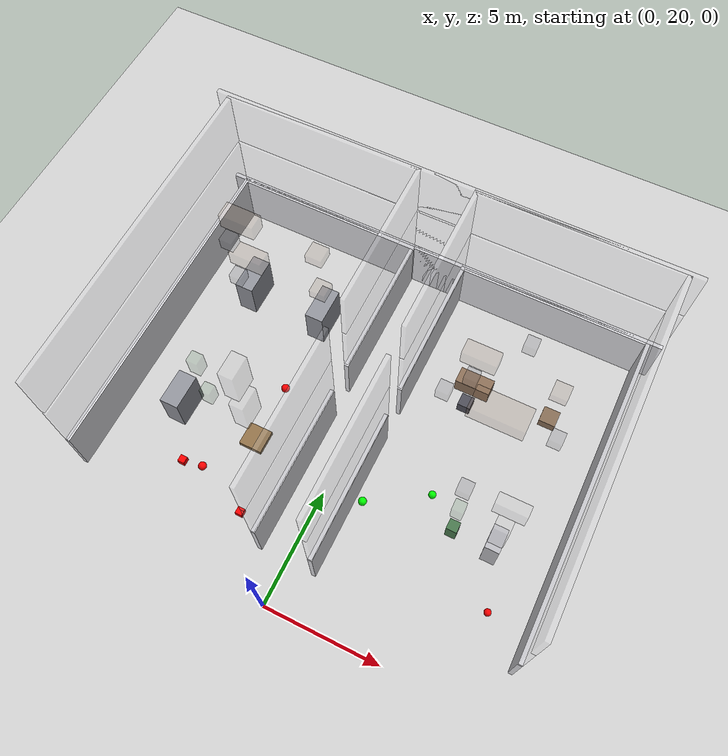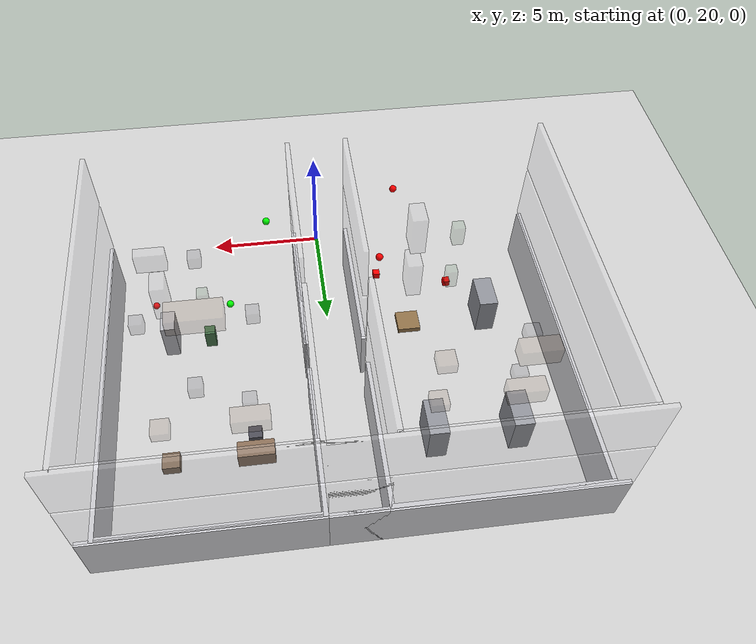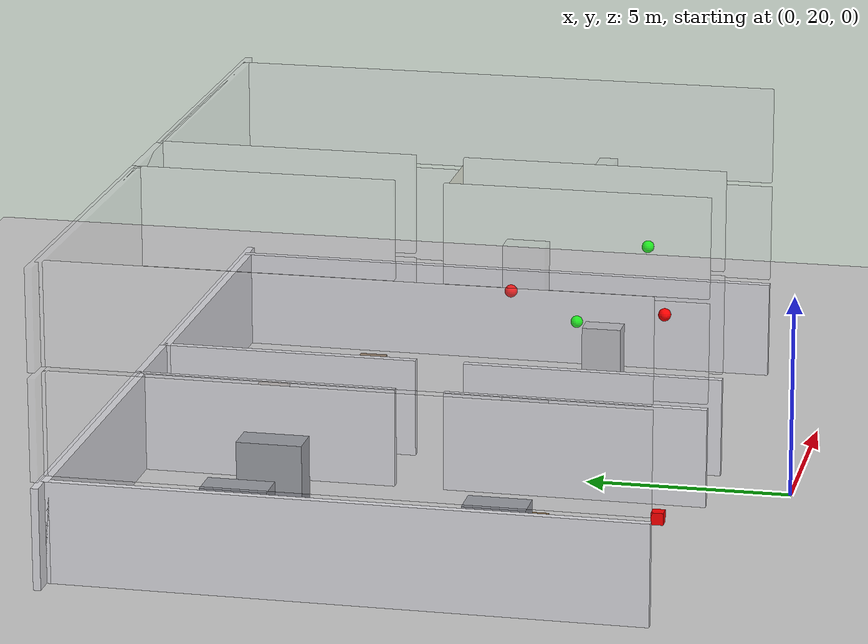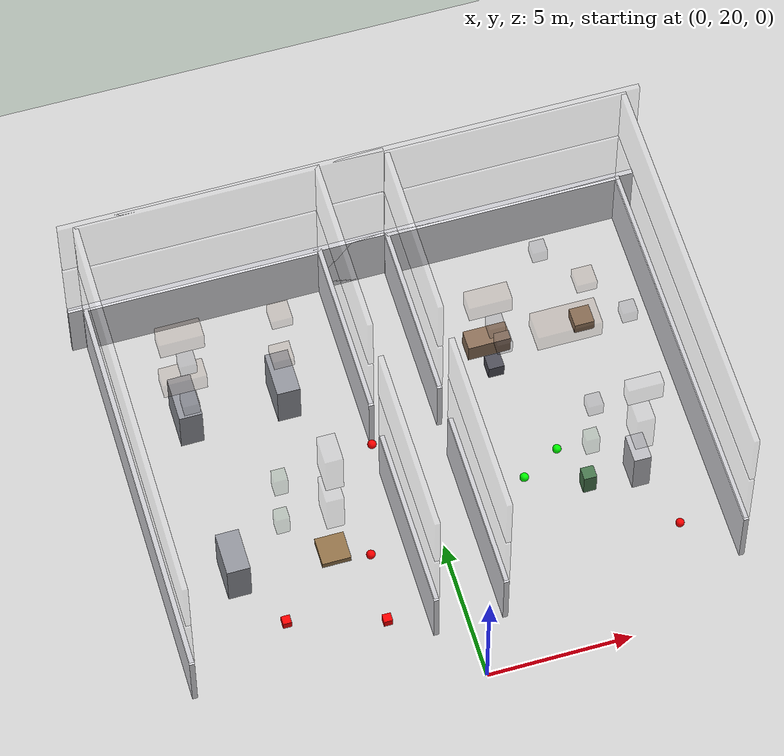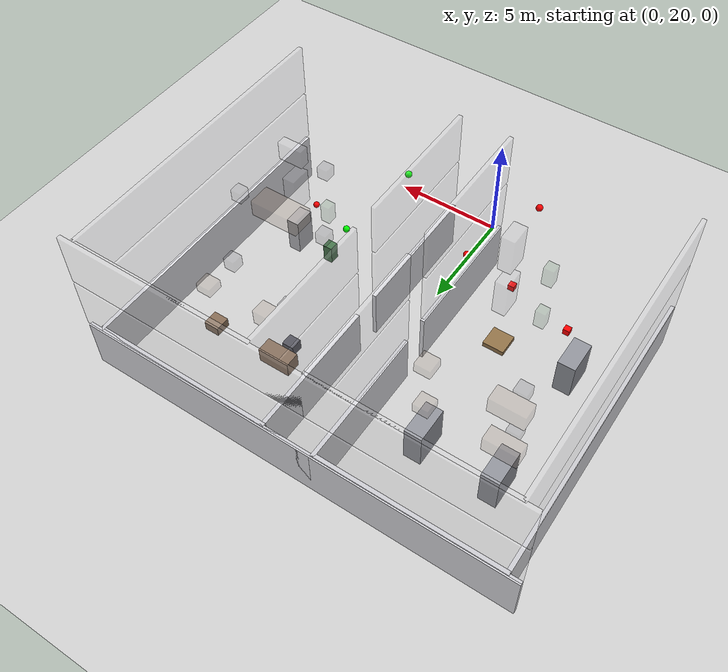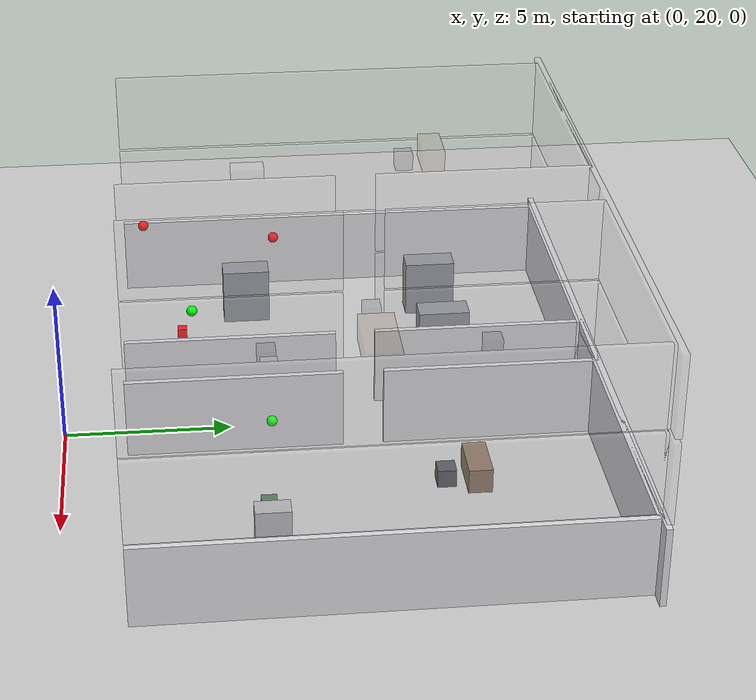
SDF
<sdf version="1.7">
 <world name="generated_world">
  <include><uri>model://sun</uri></include>
  <include><uri>model://ground_plane</uri></include>
  <model name="generated_building">
   <static>true</static>
   <link name="exterior_north_floor_0">
    <pose>0.0000 35.9100 1.2250 0.0000 0.0000 0.0000</pose>
    <collision name="exterior_north_floor_0_collision">
     <geometry><box><size>20.0000 0.1800 2.4500</size></box></geometry>
    </collision>
    <visual name="exterior_north_floor_0_visual">
     <geometry><box><size>20.0000 0.1800 2.4500</size></box></geometry>
     <material><ambient>0.86 0.86 0.88 1</ambient><diffuse>0.86 0.86 0.88 1</diffuse></material>
    </visual>
    <gravity>false</gravity>
   </link>
   <link name="north_end_wall_floor_0">
    <pose>0.0000 35.9100 1.2250 0.0000 0.0000 0.0000</pose>
    <collision name="north_end_wall_floor_0_collision">
     <geometry><box><size>2.2000 0.1800 2.4500</size></box></geometry>
    </collision>
    <visual name="north_end_wall_floor_0_visual">
     <geometry><box><size>2.2000 0.1800 2.4500</size></box></geometry>
     <material><ambient>0.86 0.86 0.88 1</ambient><diffuse>0.86 0.86 0.88 1</diffuse></material>
    </visual>
    <gravity>false</gravity>
   </link>
   <link name="floor_0_room_2_corridor_wall_lower">
    <pose>-1.1900 25.0875 1.2250 0.0000 0.0000 0.0000</pose>
    <collision name="floor_0_room_2_corridor_wall_lower_collision">
     <geometry><box><size>0.1800 6.4150 2.4500</size></box></geometry>
    </collision>
    <visual name="floor_0_room_2_corridor_wall_lower_visual">
     <geometry><box><size>0.1800 6.4150 2.4500</size></box></geometry>
     <material><ambient>0.86 0.86 0.88 1</ambient><diffuse>0.86 0.86 0.88 1</diffuse></material>
    </visual>
    <gravity>false</gravity>
   </link>
   <link name="floor_0_room_2_corridor_wall_upper">
    <pose>-1.1900 32.7025 1.2250 0.0000 0.0000 0.0000</pose>
    <collision name="floor_0_room_2_corridor_wall_upper_collision">
     <geometry><box><size>0.1800 6.4150 2.4500</size></box></geometry>
    </collision>
    <visual name="floor_0_room_2_corridor_wall_upper_visual">
     <geometry><box><size>0.1800 6.4150 2.4500</size></box></geometry>
     <material><ambient>0.86 0.86 0.88 1</ambient><diffuse>0.86 0.86 0.88 1</diffuse></material>
    </visual>
    <gravity>false</gravity>
   </link>
   <link name="floor_0_room_2_west_wall">
    <pose>-9.4100 28.8950 1.2250 0.0000 0.0000 0.0000</pose>
    <collision name="floor_0_room_2_west_wall_collision">
     <geometry><box><size>0.1800 14.0300 2.4500</size></box></geometry>
    </collision>
    <visual name="floor_0_room_2_west_wall_visual">
     <geometry><box><size>0.1800 14.0300 2.4500</size></box></geometry>
     <material><ambient>0.86 0.86 0.88 1</ambient><diffuse>0.86 0.86 0.88 1</diffuse></material>
    </visual>
    <gravity>false</gravity>
   </link>
   <link name="floor_0_room_2_north_wall">
    <pose>-5.3000 35.8200 1.2250 0.0000 0.0000 0.0000</pose>
    <collision name="floor_0_room_2_north_wall_collision">
     <geometry><box><size>8.4000 0.1800 2.4500</size></box></geometry>
    </collision>
    <visual name="floor_0_room_2_north_wall_visual">
     <geometry><box><size>8.4000 0.1800 2.4500</size></box></geometry>
     <material><ambient>0.86 0.86 0.88 1</ambient><diffuse>0.86 0.86 0.88 1</diffuse></material>
    </visual>
    <gravity>false</gravity>
   </link>
   <link name="floor_0_room_3_corridor_wall_lower">
    <pose>1.1900 25.0875 1.2250 0.0000 0.0000 0.0000</pose>
    <collision name="floor_0_room_3_corridor_wall_lower_collision">
     <geometry><box><size>0.1800 6.4150 2.4500</size></box></geometry>
    </collision>
    <visual name="floor_0_room_3_corridor_wall_lower_visual">
     <geometry><box><size>0.1800 6.4150 2.4500</size></box></geometry>
     <material><ambient>0.86 0.86 0.88 1</ambient><diffuse>0.86 0.86 0.88 1</diffuse></material>
    </visual>
    <gravity>false</gravity>
   </link>
   <link name="floor_0_room_3_corridor_wall_upper">
    <pose>1.1900 32.7025 1.2250 0.0000 0.0000 0.0000</pose>
    <collision name="floor_0_room_3_corridor_wall_upper_collision">
     <geometry><box><size>0.1800 6.4150 2.4500</size></box></geometry>
    </collision>
    <visual name="floor_0_room_3_corridor_wall_upper_visual">
     <geometry><box><size>0.1800 6.4150 2.4500</size></box></geometry>
     <material><ambient>0.86 0.86 0.88 1</ambient><diffuse>0.86 0.86 0.88 1</diffuse></material>
    </visual>
    <gravity>false</gravity>
   </link>
   <link name="floor_0_room_3_east_wall">
    <pose>9.4100 28.8950 1.2250 0.0000 0.0000 0.0000</pose>
    <collision name="floor_0_room_3_east_wall_collision">
     <geometry><box><size>0.1800 14.0300 2.4500</size></box></geometry>
    </collision>
    <visual name="floor_0_room_3_east_wall_visual">
     <geometry><box><size>0.1800 14.0300 2.4500</size></box></geometry>
     <material><ambient>0.86 0.86 0.88 1</ambient><diffuse>0.86 0.86 0.88 1</diffuse></material>
    </visual>
    <gravity>false</gravity>
   </link>
   <link name="floor_0_room_3_north_wall">
    <pose>5.3000 35.8200 1.2250 0.0000 0.0000 0.0000</pose>
    <collision name="floor_0_room_3_north_wall_collision">
     <geometry><box><size>8.4000 0.1800 2.4500</size></box></geometry>
    </collision>
    <visual name="floor_0_room_3_north_wall_visual">
     <geometry><box><size>8.4000 0.1800 2.4500</size></box></geometry>
     <material><ambient>0.86 0.86 0.88 1</ambient><diffuse>0.86 0.86 0.88 1</diffuse></material>
    </visual>
    <gravity>false</gravity>
   </link>
   <link name="floor_0_room_2_rack_a">
    <pose>-7.0000 31.9525 0.9000 0.0000 0.0000 0.0000</pose>
    <collision name="floor_0_room_2_rack_a_collision">
     <geometry><box><size>0.8000 1.6000 1.8000</size></box></geometry>
    </collision>
    <visual name="floor_0_room_2_rack_a_visual">
     <geometry><box><size>0.8000 1.6000 1.8000</size></box></geometry>
     <material><ambient>0.56 0.57 0.60 1</ambient><diffuse>0.56 0.57 0.60 1</diffuse></material>
    </visual>
    <gravity>false</gravity>
   </link>
   <link name="floor_0_room_2_rack_b">
    <pose>-3.6000 31.9525 0.9000 0.0000 0.0000 0.0000</pose>
    <collision name="floor_0_room_2_rack_b_collision">
     <geometry><box><size>0.8000 1.6000 1.8000</size></box></geometry>
    </collision>
    <visual name="floor_0_room_2_rack_b_visual">
     <geometry><box><size>0.8000 1.6000 1.8000</size></box></geometry>
     <material><ambient>0.56 0.57 0.60 1</ambient><diffuse>0.56 0.57 0.60 1</diffuse></material>
    </visual>
    <gravity>false</gravity>
   </link>
   <link name="floor_0_room_2_rack_c">
    <pose>-7.0000 25.8375 0.9000 0.0000 0.0000 0.0000</pose>
    <collision name="floor_0_room_2_rack_c_collision">
     <geometry><box><size>0.8000 1.5000 1.8000</size></box></geometry>
    </collision>
    <visual name="floor_0_room_2_rack_c_visual">
     <geometry><box><size>0.8000 1.5000 1.8000</size></box></geometry>
     <material><ambient>0.56 0.57 0.60 1</ambient><diffuse>0.56 0.57 0.60 1</diffuse></material>
    </visual>
    <gravity>false</gravity>
   </link>
   <link name="floor_0_room_2_pallet">
    <pose>-3.6000 25.8375 0.1200 0.0000 0.0000 0.0000</pose>
    <collision name="floor_0_room_2_pallet_collision">
     <geometry><box><size>1.0000 1.0000 0.2400</size></box></geometry>
    </collision>
    <visual name="floor_0_room_2_pallet_visual">
     <geometry><box><size>1.0000 1.0000 0.2400</size></box></geometry>
     <material><ambient>0.56 0.44 0.28 1</ambient><diffuse>0.56 0.44 0.28 1</diffuse></material>
    </visual>
    <gravity>false</gravity>
   </link>
   <link name="floor_0_room_3_desk">
    <pose>3.6000 31.9525 0.4500 0.0000 0.0000 0.0000</pose>
    <collision name="floor_0_room_3_desk_collision">
     <geometry><box><size>1.5000 0.7000 0.7500</size></box></geometry>
    </collision>
    <visual name="floor_0_room_3_desk_visual">
     <geometry><box><size>1.5000 0.7000 0.7500</size></box></geometry>
     <material><ambient>0.54 0.43 0.34 1</ambient><diffuse>0.54 0.43 0.34 1</diffuse></material>
    </visual>
    <gravity>false</gravity>
   </link>
   <link name="floor_0_room_3_chair">
    <pose>3.6000 31.0525 0.2800 0.0000 0.0000 0.0000</pose>
    <collision name="floor_0_room_3_chair_collision">
     <geometry><box><size>0.5500 0.5500 0.5500</size></box></geometry>
    </collision>
    <visual name="floor_0_room_3_chair_visual">
     <geometry><box><size>0.5500 0.5500 0.5500</size></box></geometry>
     <material><ambient>0.30 0.30 0.34 1</ambient><diffuse>0.30 0.30 0.34 1</diffuse></material>
    </visual>
    <gravity>false</gravity>
   </link>
   <link name="floor_0_room_3_cabinet">
    <pose>7.0000 25.8375 0.9000 0.0000 0.0000 0.0000</pose>
    <collision name="floor_0_room_3_cabinet_collision">
     <geometry><box><size>0.6000 1.0000 1.8000</size></box></geometry>
    </collision>
    <visual name="floor_0_room_3_cabinet_visual">
     <geometry><box><size>0.6000 1.0000 1.8000</size></box></geometry>
     <material><ambient>0.72 0.72 0.74 1</ambient><diffuse>0.72 0.72 0.74 1</diffuse></material>
    </visual>
    <gravity>false</gravity>
   </link>
   <link name="floor_0_room_3_side_table">
    <pose>7.0000 31.9525 0.3200 0.0000 0.0000 0.0000</pose>
    <collision name="floor_0_room_3_side_table_collision">
     <geometry><box><size>0.7000 0.7000 0.4500</size></box></geometry>
    </collision>
    <visual name="floor_0_room_3_side_table_visual">
     <geometry><box><size>0.7000 0.7000 0.4500</size></box></geometry>
     <material><ambient>0.52 0.42 0.33 1</ambient><diffuse>0.52 0.42 0.33 1</diffuse></material>
    </visual>
    <gravity>false</gravity>
   </link>
   <link name="floor_0_room_3_planter">
    <pose>5.3000 25.8375 0.4500 0.0000 0.0000 0.0000</pose>
    <collision name="floor_0_room_3_planter_collision">
     <geometry><box><size>0.4500 0.4500 0.9000</size></box></geometry>
    </collision>
    <visual name="floor_0_room_3_planter_visual">
     <geometry><box><size>0.4500 0.4500 0.9000</size></box></geometry>
     <material><ambient>0.28 0.46 0.30 1</ambient><diffuse>0.28 0.46 0.30 1</diffuse></material>
    </visual>
    <gravity>false</gravity>
   </link>
   <link name="exterior_north_floor_1">
    <pose>0.0000 35.9100 3.8250 0.0000 0.0000 0.0000</pose>
    <collision name="exterior_north_floor_1_collision">
     <geometry><box><size>20.0000 0.1800 2.4500</size></box></geometry>
    </collision>
    <visual name="exterior_north_floor_1_visual">
     <geometry><box><size>20.0000 0.1800 2.4500</size></box></geometry>
     <material><ambient>0.86 0.86 0.88 1</ambient><diffuse>0.86 0.86 0.88 1</diffuse></material>
     <transparency>0.80</transparency>
    </visual>
    <gravity>false</gravity>
   </link>
   <link name="north_end_wall_floor_1">
    <pose>0.0000 35.9100 3.8250 0.0000 0.0000 0.0000</pose>
    <collision name="north_end_wall_floor_1_collision">
     <geometry><box><size>2.2000 0.1800 2.4500</size></box></geometry>
    </collision>
    <visual name="north_end_wall_floor_1_visual">
     <geometry><box><size>2.2000 0.1800 2.4500</size></box></geometry>
     <material><ambient>0.86 0.86 0.88 1</ambient><diffuse>0.86 0.86 0.88 1</diffuse></material>
     <transparency>0.80</transparency>
    </visual>
    <gravity>false</gravity>
   </link>
   <link name="floor_1_room_2_corridor_wall_lower">
    <pose>-1.1900 25.0875 3.8250 0.0000 0.0000 0.0000</pose>
    <collision name="floor_1_room_2_corridor_wall_lower_collision">
     <geometry><box><size>0.1800 6.4150 2.4500</size></box></geometry>
    </collision>
    <visual name="floor_1_room_2_corridor_wall_lower_visual">
     <geometry><box><size>0.1800 6.4150 2.4500</size></box></geometry>
     <material><ambient>0.86 0.86 0.88 1</ambient><diffuse>0.86 0.86 0.88 1</diffuse></material>
     <transparency>0.80</transparency>
    </visual>
    <gravity>false</gravity>
   </link>
   <link name="floor_1_room_2_corridor_wall_upper">
    <pose>-1.1900 32.7025 3.8250 0.0000 0.0000 0.0000</pose>
    <collision name="floor_1_room_2_corridor_wall_upper_collision">
     <geometry><box><size>0.1800 6.4150 2.4500</size></box></geometry>
    </collision>
    <visual name="floor_1_room_2_corridor_wall_upper_visual">
     <geometry><box><size>0.1800 6.4150 2.4500</size></box></geometry>
     <material><ambient>0.86 0.86 0.88 1</ambient><diffuse>0.86 0.86 0.88 1</diffuse></material>
     <transparency>0.80</transparency>
    </visual>
    <gravity>false</gravity>
   </link>
   <link name="floor_1_room_2_west_wall">
    <pose>-9.4100 28.8950 3.8250 0.0000 0.0000 0.0000</pose>
    <collision name="floor_1_room_2_west_wall_collision">
     <geometry><box><size>0.1800 14.0300 2.4500</size></box></geometry>
    </collision>
    <visual name="floor_1_room_2_west_wall_visual">
     <geometry><box><size>0.1800 14.0300 2.4500</size></box></geometry>
     <material><ambient>0.86 0.86 0.88 1</ambient><diffuse>0.86 0.86 0.88 1</diffuse></material>
     <transparency>0.80</transparency>
    </visual>
    <gravity>false</gravity>
   </link>
   <link name="floor_1_room_2_north_wall">
    <pose>-5.3000 35.8200 3.8250 0.0000 0.0000 0.0000</pose>
    <collision name="floor_1_room_2_north_wall_collision">
     <geometry><box><size>8.4000 0.1800 2.4500</size></box></geometry>
    </collision>
    <visual name="floor_1_room_2_north_wall_visual">
     <geometry><box><size>8.4000 0.1800 2.4500</size></box></geometry>
     <material><ambient>0.86 0.86 0.88 1</ambient><diffuse>0.86 0.86 0.88 1</diffuse></material>
     <transparency>0.80</transparency>
    </visual>
    <gravity>false</gravity>
   </link>
   <link name="floor_1_room_3_corridor_wall_lower">
    <pose>1.1900 25.0875 3.8250 0.0000 0.0000 0.0000</pose>
    <collision name="floor_1_room_3_corridor_wall_lower_collision">
     <geometry><box><size>0.1800 6.4150 2.4500</size></box></geometry>
    </collision>
    <visual name="floor_1_room_3_corridor_wall_lower_visual">
     <geometry><box><size>0.1800 6.4150 2.4500</size></box></geometry>
     <material><ambient>0.86 0.86 0.88 1</ambient><diffuse>0.86 0.86 0.88 1</diffuse></material>
     <transparency>0.80</transparency>
    </visual>
    <gravity>false</gravity>
   </link>
   <link name="floor_1_room_3_corridor_wall_upper">
    <pose>1.1900 32.7025 3.8250 0.0000 0.0000 0.0000</pose>
    <collision name="floor_1_room_3_corridor_wall_upper_collision">
     <geometry><box><size>0.1800 6.4150 2.4500</size></box></geometry>
    </collision>
    <visual name="floor_1_room_3_corridor_wall_upper_visual">
     <geometry><box><size>0.1800 6.4150 2.4500</size></box></geometry>
     <material><ambient>0.86 0.86 0.88 1</ambient><diffuse>0.86 0.86 0.88 1</diffuse></material>
     <transparency>0.80</transparency>
    </visual>
    <gravity>false</gravity>
   </link>
   <link name="floor_1_room_3_east_wall">
    <pose>9.4100 28.8950 3.8250 0.0000 0.0000 0.0000</pose>
    <collision name="floor_1_room_3_east_wall_collision">
     <geometry><box><size>0.1800 14.0300 2.4500</size></box></geometry>
    </collision>
    <visual name="floor_1_room_3_east_wall_visual">
     <geometry><box><size>0.1800 14.0300 2.4500</size></box></geometry>
     <material><ambient>0.86 0.86 0.88 1</ambient><diffuse>0.86 0.86 0.88 1</diffuse></material>
     <transparency>0.80</transparency>
    </visual>
    <gravity>false</gravity>
   </link>
   <link name="floor_1_room_3_north_wall">
    <pose>5.3000 35.8200 3.8250 0.0000 0.0000 0.0000</pose>
    <collision name="floor_1_room_3_north_wall_collision">
     <geometry><box><size>8.4000 0.1800 2.4500</size></box></geometry>
    </collision>
    <visual name="floor_1_room_3_north_wall_visual">
     <geometry><box><size>8.4000 0.1800 2.4500</size></box></geometry>
     <material><ambient>0.86 0.86 0.88 1</ambient><diffuse>0.86 0.86 0.88 1</diffuse></material>
     <transparency>0.80</transparency>
    </visual>
    <gravity>false</gravity>
   </link>
   <link name="floor_1_room_2_desk">
    <pose>-7.0000 31.9525 3.0500 0.0000 0.0000 0.0000</pose>
    <collision name="floor_1_room_2_desk_collision">
     <geometry><box><size>1.5000 0.7000 0.7500</size></box></geometry>
    </collision>
    <visual name="floor_1_room_2_desk_visual">
     <geometry><box><size>1.5000 0.7000 0.7500</size></box></geometry>
     <material><ambient>0.54 0.43 0.34 1</ambient><diffuse>0.54 0.43 0.34 1</diffuse></material>
     <transparency>0.80</transparency>
    </visual>
    <gravity>false</gravity>
   </link>
   <link name="floor_1_room_2_chair">
    <pose>-7.0000 31.0525 2.8800 0.0000 0.0000 0.0000</pose>
    <collision name="floor_1_room_2_chair_collision">
     <geometry><box><size>0.5500 0.5500 0.5500</size></box></geometry>
    </collision>
    <visual name="floor_1_room_2_chair_visual">
     <geometry><box><size>0.5500 0.5500 0.5500</size></box></geometry>
     <material><ambient>0.30 0.30 0.34 1</ambient><diffuse>0.30 0.30 0.34 1</diffuse></material>
     <transparency>0.80</transparency>
    </visual>
    <gravity>false</gravity>
   </link>
   <link name="floor_1_room_2_cabinet">
    <pose>-3.6000 25.8375 3.5000 0.0000 0.0000 0.0000</pose>
    <collision name="floor_1_room_2_cabinet_collision">
     <geometry><box><size>0.6000 1.0000 1.8000</size></box></geometry>
    </collision>
    <visual name="floor_1_room_2_cabinet_visual">
     <geometry><box><size>0.6000 1.0000 1.8000</size></box></geometry>
     <material><ambient>0.72 0.72 0.74 1</ambient><diffuse>0.72 0.72 0.74 1</diffuse></material>
     <transparency>0.80</transparency>
    </visual>
    <gravity>false</gravity>
   </link>
   <link name="floor_1_room_2_side_table">
    <pose>-3.6000 31.9525 2.9200 0.0000 0.0000 0.0000</pose>
    <collision name="floor_1_room_2_side_table_collision">
     <geometry><box><size>0.7000 0.7000 0.4500</size></box></geometry>
    </collision>
    <visual name="floor_1_room_2_side_table_visual">
     <geometry><box><size>0.7000 0.7000 0.4500</size></box></geometry>
     <material><ambient>0.52 0.42 0.33 1</ambient><diffuse>0.52 0.42 0.33 1</diffuse></material>
     <transparency>0.80</transparency>
    </visual>
    <gravity>false</gravity>
   </link>
   <link name="floor_1_room_2_planter">
    <pose>-5.3000 25.8375 3.0500 0.0000 0.0000 0.0000</pose>
    <collision name="floor_1_room_2_planter_collision">
     <geometry><box><size>0.4500 0.4500 0.9000</size></box></geometry>
    </collision>
    <visual name="floor_1_room_2_planter_visual">
     <geometry><box><size>0.4500 0.4500 0.9000</size></box></geometry>
     <material><ambient>0.28 0.46 0.30 1</ambient><diffuse>0.28 0.46 0.30 1</diffuse></material>
     <transparency>0.80</transparency>
    </visual>
    <gravity>false</gravity>
   </link>
   <link name="floor_1_room_3_desk">
    <pose>3.6000 31.9525 3.0500 0.0000 0.0000 0.0000</pose>
    <collision name="floor_1_room_3_desk_collision">
     <geometry><box><size>1.5000 0.7000 0.7500</size></box></geometry>
    </collision>
    <visual name="floor_1_room_3_desk_visual">
     <geometry><box><size>1.5000 0.7000 0.7500</size></box></geometry>
     <material><ambient>0.54 0.43 0.34 1</ambient><diffuse>0.54 0.43 0.34 1</diffuse></material>
     <transparency>0.80</transparency>
    </visual>
    <gravity>false</gravity>
   </link>
   <link name="floor_1_room_3_chair">
    <pose>3.6000 31.0525 2.8800 0.0000 0.0000 0.0000</pose>
    <collision name="floor_1_room_3_chair_collision">
     <geometry><box><size>0.5500 0.5500 0.5500</size></box></geometry>
    </collision>
    <visual name="floor_1_room_3_chair_visual">
     <geometry><box><size>0.5500 0.5500 0.5500</size></box></geometry>
     <material><ambient>0.30 0.30 0.34 1</ambient><diffuse>0.30 0.30 0.34 1</diffuse></material>
     <transparency>0.80</transparency>
    </visual>
    <gravity>false</gravity>
   </link>
   <link name="floor_1_room_3_cabinet">
    <pose>7.0000 25.8375 3.5000 0.0000 0.0000 0.0000</pose>
    <collision name="floor_1_room_3_cabinet_collision">
     <geometry><box><size>0.6000 1.0000 1.8000</size></box></geometry>
    </collision>
    <visual name="floor_1_room_3_cabinet_visual">
     <geometry><box><size>0.6000 1.0000 1.8000</size></box></geometry>
     <material><ambient>0.72 0.72 0.74 1</ambient><diffuse>0.72 0.72 0.74 1</diffuse></material>
     <transparency>0.80</transparency>
    </visual>
    <gravity>false</gravity>
   </link>
   <link name="floor_1_room_3_side_table">
    <pose>7.0000 31.9525 2.9200 0.0000 0.0000 0.0000</pose>
    <collision name="floor_1_room_3_side_table_collision">
     <geometry><box><size>0.7000 0.7000 0.4500</size></box></geometry>
    </collision>
    <visual name="floor_1_room_3_side_table_visual">
     <geometry><box><size>0.7000 0.7000 0.4500</size></box></geometry>
     <material><ambient>0.52 0.42 0.33 1</ambient><diffuse>0.52 0.42 0.33 1</diffuse></material>
     <transparency>0.80</transparency>
    </visual>
    <gravity>false</gravity>
   </link>
   <link name="floor_1_room_3_planter">
    <pose>5.3000 25.8375 3.0500 0.0000 0.0000 0.0000</pose>
    <collision name="floor_1_room_3_planter_collision">
     <geometry><box><size>0.4500 0.4500 0.9000</size></box></geometry>
    </collision>
    <visual name="floor_1_room_3_planter_visual">
     <geometry><box><size>0.4500 0.4500 0.9000</size></box></geometry>
     <material><ambient>0.28 0.46 0.30 1</ambient><diffuse>0.28 0.46 0.30 1</diffuse></material>
     <transparency>0.80</transparency>
    </visual>
    <gravity>false</gravity>
   </link>
   <link name="exterior_north_floor_2">
    <pose>0.0000 35.9100 6.4250 0.0000 0.0000 0.0000</pose>
    <collision name="exterior_north_floor_2_collision">
     <geometry><box><size>20.0000 0.1800 2.4500</size></box></geometry>
    </collision>
    <visual name="exterior_north_floor_2_visual">
     <geometry><box><size>20.0000 0.1800 2.4500</size></box></geometry>
     <material><ambient>0.86 0.86 0.88 1</ambient><diffuse>0.86 0.86 0.88 1</diffuse></material>
     <transparency>0.80</transparency>
    </visual>
    <gravity>false</gravity>
   </link>
   <link name="north_end_wall_floor_2">
    <pose>0.0000 35.9100 6.4250 0.0000 0.0000 0.0000</pose>
    <collision name="north_end_wall_floor_2_collision">
     <geometry><box><size>2.2000 0.1800 2.4500</size></box></geometry>
    </collision>
    <visual name="north_end_wall_floor_2_visual">
     <geometry><box><size>2.2000 0.1800 2.4500</size></box></geometry>
     <material><ambient>0.86 0.86 0.88 1</ambient><diffuse>0.86 0.86 0.88 1</diffuse></material>
     <transparency>0.80</transparency>
    </visual>
    <gravity>false</gravity>
   </link>
   <link name="floor_2_room_2_corridor_wall_lower">
    <pose>-1.1900 25.0875 6.4250 0.0000 0.0000 0.0000</pose>
    <collision name="floor_2_room_2_corridor_wall_lower_collision">
     <geometry><box><size>0.1800 6.4150 2.4500</size></box></geometry>
    </collision>
    <visual name="floor_2_room_2_corridor_wall_lower_visual">
     <geometry><box><size>0.1800 6.4150 2.4500</size></box></geometry>
     <material><ambient>0.86 0.86 0.88 1</ambient><diffuse>0.86 0.86 0.88 1</diffuse></material>
     <transparency>0.80</transparency>
    </visual>
    <gravity>false</gravity>
   </link>
   <link name="floor_2_room_2_corridor_wall_upper">
    <pose>-1.1900 32.7025 6.4250 0.0000 0.0000 0.0000</pose>
    <collision name="floor_2_room_2_corridor_wall_upper_collision">
     <geometry><box><size>0.1800 6.4150 2.4500</size></box></geometry>
    </collision>
    <visual name="floor_2_room_2_corridor_wall_upper_visual">
     <geometry><box><size>0.1800 6.4150 2.4500</size></box></geometry>
     <material><ambient>0.86 0.86 0.88 1</ambient><diffuse>0.86 0.86 0.88 1</diffuse></material>
     <transparency>0.80</transparency>
    </visual>
    <gravity>false</gravity>
   </link>
   <link name="floor_2_room_2_west_wall">
    <pose>-9.4100 28.8950 6.4250 0.0000 0.0000 0.0000</pose>
    <collision name="floor_2_room_2_west_wall_collision">
     <geometry><box><size>0.1800 14.0300 2.4500</size></box></geometry>
    </collision>
    <visual name="floor_2_room_2_west_wall_visual">
     <geometry><box><size>0.1800 14.0300 2.4500</size></box></geometry>
     <material><ambient>0.86 0.86 0.88 1</ambient><diffuse>0.86 0.86 0.88 1</diffuse></material>
     <transparency>0.80</transparency>
    </visual>
    <gravity>false</gravity>
   </link>
   <link name="floor_2_room_2_north_wall">
    <pose>-5.3000 35.8200 6.4250 0.0000 0.0000 0.0000</pose>
    <collision name="floor_2_room_2_north_wall_collision">
     <geometry><box><size>8.4000 0.1800 2.4500</size></box></geometry>
    </collision>
    <visual name="floor_2_room_2_north_wall_visual">
     <geometry><box><size>8.4000 0.1800 2.4500</size></box></geometry>
     <material><ambient>0.86 0.86 0.88 1</ambient><diffuse>0.86 0.86 0.88 1</diffuse></material>
     <transparency>0.80</transparency>
    </visual>
    <gravity>false</gravity>
   </link>
   <link name="floor_2_room_3_corridor_wall_lower">
    <pose>1.1900 25.0875 6.4250 0.0000 0.0000 0.0000</pose>
    <collision name="floor_2_room_3_corridor_wall_lower_collision">
     <geometry><box><size>0.1800 6.4150 2.4500</size></box></geometry>
    </collision>
    <visual name="floor_2_room_3_corridor_wall_lower_visual">
     <geometry><box><size>0.1800 6.4150 2.4500</size></box></geometry>
     <material><ambient>0.86 0.86 0.88 1</ambient><diffuse>0.86 0.86 0.88 1</diffuse></material>
     <transparency>0.80</transparency>
    </visual>
    <gravity>false</gravity>
   </link>
   <link name="floor_2_room_3_corridor_wall_upper">
    <pose>1.1900 32.7025 6.4250 0.0000 0.0000 0.0000</pose>
    <collision name="floor_2_room_3_corridor_wall_upper_collision">
     <geometry><box><size>0.1800 6.4150 2.4500</size></box></geometry>
    </collision>
    <visual name="floor_2_room_3_corridor_wall_upper_visual">
     <geometry><box><size>0.1800 6.4150 2.4500</size></box></geometry>
     <material><ambient>0.86 0.86 0.88 1</ambient><diffuse>0.86 0.86 0.88 1</diffuse></material>
     <transparency>0.80</transparency>
    </visual>
    <gravity>false</gravity>
   </link>
   <link name="floor_2_room_3_east_wall">
    <pose>9.4100 28.8950 6.4250 0.0000 0.0000 0.0000</pose>
    <collision name="floor_2_room_3_east_wall_collision">
     <geometry><box><size>0.1800 14.0300 2.4500</size></box></geometry>
    </collision>
    <visual name="floor_2_room_3_east_wall_visual">
     <geometry><box><size>0.1800 14.0300 2.4500</size></box></geometry>
     <material><ambient>0.86 0.86 0.88 1</ambient><diffuse>0.86 0.86 0.88 1</diffuse></material>
     <transparency>0.80</transparency>
    </visual>
    <gravity>false</gravity>
   </link>
   <link name="floor_2_room_3_north_wall">
    <pose>5.3000 35.8200 6.4250 0.0000 0.0000 0.0000</pose>
    <collision name="floor_2_room_3_north_wall_collision">
     <geometry><box><size>8.4000 0.1800 2.4500</size></box></geometry>
    </collision>
    <visual name="floor_2_room_3_north_wall_visual">
     <geometry><box><size>8.4000 0.1800 2.4500</size></box></geometry>
     <material><ambient>0.86 0.86 0.88 1</ambient><diffuse>0.86 0.86 0.88 1</diffuse></material>
     <transparency>0.80</transparency>
    </visual>
    <gravity>false</gravity>
   </link>
   <link name="floor_2_room_2_desk">
    <pose>-7.0000 31.9525 5.6500 0.0000 0.0000 0.0000</pose>
    <collision name="floor_2_room_2_desk_collision">
     <geometry><box><size>1.5000 0.7000 0.7500</size></box></geometry>
    </collision>
    <visual name="floor_2_room_2_desk_visual">
     <geometry><box><size>1.5000 0.7000 0.7500</size></box></geometry>
     <material><ambient>0.54 0.43 0.34 1</ambient><diffuse>0.54 0.43 0.34 1</diffuse></material>
     <transparency>0.80</transparency>
    </visual>
    <gravity>false</gravity>
   </link>
   <link name="floor_2_room_2_chair">
    <pose>-7.0000 31.0525 5.4800 0.0000 0.0000 0.0000</pose>
    <collision name="floor_2_room_2_chair_collision">
     <geometry><box><size>0.5500 0.5500 0.5500</size></box></geometry>
    </collision>
    <visual name="floor_2_room_2_chair_visual">
     <geometry><box><size>0.5500 0.5500 0.5500</size></box></geometry>
     <material><ambient>0.30 0.30 0.34 1</ambient><diffuse>0.30 0.30 0.34 1</diffuse></material>
     <transparency>0.80</transparency>
    </visual>
    <gravity>false</gravity>
   </link>
   <link name="floor_2_room_2_cabinet">
    <pose>-3.6000 25.8375 6.1000 0.0000 0.0000 0.0000</pose>
    <collision name="floor_2_room_2_cabinet_collision">
     <geometry><box><size>0.6000 1.0000 1.8000</size></box></geometry>
    </collision>
    <visual name="floor_2_room_2_cabinet_visual">
     <geometry><box><size>0.6000 1.0000 1.8000</size></box></geometry>
     <material><ambient>0.72 0.72 0.74 1</ambient><diffuse>0.72 0.72 0.74 1</diffuse></material>
     <transparency>0.80</transparency>
    </visual>
    <gravity>false</gravity>
   </link>
   <link name="floor_2_room_2_side_table">
    <pose>-3.6000 31.9525 5.5200 0.0000 0.0000 0.0000</pose>
    <collision name="floor_2_room_2_side_table_collision">
     <geometry><box><size>0.7000 0.7000 0.4500</size></box></geometry>
    </collision>
    <visual name="floor_2_room_2_side_table_visual">
     <geometry><box><size>0.7000 0.7000 0.4500</size></box></geometry>
     <material><ambient>0.52 0.42 0.33 1</ambient><diffuse>0.52 0.42 0.33 1</diffuse></material>
     <transparency>0.80</transparency>
    </visual>
    <gravity>false</gravity>
   </link>
   <link name="floor_2_room_2_planter">
    <pose>-5.3000 25.8375 5.6500 0.0000 0.0000 0.0000</pose>
    <collision name="floor_2_room_2_planter_collision">
     <geometry><box><size>0.4500 0.4500 0.9000</size></box></geometry>
    </collision>
    <visual name="floor_2_room_2_planter_visual">
     <geometry><box><size>0.4500 0.4500 0.9000</size></box></geometry>
     <material><ambient>0.28 0.46 0.30 1</ambient><diffuse>0.28 0.46 0.30 1</diffuse></material>
     <transparency>0.80</transparency>
    </visual>
    <gravity>false</gravity>
   </link>
   <link name="floor_2_room_3_table">
    <pose>5.3000 28.8950 5.6500 0.0000 0.0000 0.0000</pose>
    <collision name="floor_2_room_3_table_collision">
     <geometry><box><size>2.2000 1.0000 0.7500</size></box></geometry>
    </collision>
    <visual name="floor_2_room_3_table_visual">
     <geometry><box><size>2.2000 1.0000 0.7500</size></box></geometry>
     <material><ambient>0.50 0.38 0.28 1</ambient><diffuse>0.50 0.38 0.28 1</diffuse></material>
     <transparency>0.80</transparency>
    </visual>
    <gravity>false</gravity>
   </link>
   <link name="floor_2_room_3_chair_north">
    <pose>5.3000 31.9525 5.4800 0.0000 0.0000 0.0000</pose>
    <collision name="floor_2_room_3_chair_north_collision">
     <geometry><box><size>0.5000 0.5000 0.5500</size></box></geometry>
    </collision>
    <visual name="floor_2_room_3_chair_north_visual">
     <geometry><box><size>0.5000 0.5000 0.5500</size></box></geometry>
     <material><ambient>0.30 0.30 0.34 1</ambient><diffuse>0.30 0.30 0.34 1</diffuse></material>
     <transparency>0.80</transparency>
    </visual>
    <gravity>false</gravity>
   </link>
   <link name="floor_2_room_3_chair_south">
    <pose>5.3000 25.8375 5.4800 0.0000 0.0000 0.0000</pose>
    <collision name="floor_2_room_3_chair_south_collision">
     <geometry><box><size>0.5000 0.5000 0.5500</size></box></geometry>
    </collision>
    <visual name="floor_2_room_3_chair_south_visual">
     <geometry><box><size>0.5000 0.5000 0.5500</size></box></geometry>
     <material><ambient>0.30 0.30 0.34 1</ambient><diffuse>0.30 0.30 0.34 1</diffuse></material>
     <transparency>0.80</transparency>
    </visual>
    <gravity>false</gravity>
   </link>
   <link name="floor_2_room_3_chair_west">
    <pose>3.1500 28.8950 5.4800 0.0000 0.0000 1.5700</pose>
    <collision name="floor_2_room_3_chair_west_collision">
     <geometry><box><size>0.5000 0.5000 0.5500</size></box></geometry>
    </collision>
    <visual name="floor_2_room_3_chair_west_visual">
     <geometry><box><size>0.5000 0.5000 0.5500</size></box></geometry>
     <material><ambient>0.30 0.30 0.34 1</ambient><diffuse>0.30 0.30 0.34 1</diffuse></material>
     <transparency>0.80</transparency>
    </visual>
    <gravity>false</gravity>
   </link>
   <link name="floor_2_room_3_chair_east">
    <pose>7.4500 28.8950 5.4800 0.0000 0.0000 1.5700</pose>
    <collision name="floor_2_room_3_chair_east_collision">
     <geometry><box><size>0.5000 0.5000 0.5500</size></box></geometry>
    </collision>
    <visual name="floor_2_room_3_chair_east_visual">
     <geometry><box><size>0.5000 0.5000 0.5500</size></box></geometry>
     <material><ambient>0.30 0.30 0.34 1</ambient><diffuse>0.30 0.30 0.34 1</diffuse></material>
     <transparency>0.80</transparency>
    </visual>
    <gravity>false</gravity>
   </link>
   <link name="floor_2_room_3_credenza">
    <pose>7.0000 25.8375 5.6500 0.0000 0.0000 0.0000</pose>
    <collision name="floor_2_room_3_credenza_collision">
     <geometry><box><size>1.2000 0.4500 0.9000</size></box></geometry>
    </collision>
    <visual name="floor_2_room_3_credenza_visual">
     <geometry><box><size>1.2000 0.4500 0.9000</size></box></geometry>
     <material><ambient>0.72 0.72 0.74 1</ambient><diffuse>0.72 0.72 0.74 1</diffuse></material>
     <transparency>0.80</transparency>
    </visual>
    <gravity>false</gravity>
   </link>
  </model>
  <model name="distractor_green_sphere_00">
   <static>true</static>
   <pose>2.349592 23.939331 5.350000 0.000000 0.000000 0.000000</pose>
   <link name="link">
    <collision name="collision"><geometry><sphere><radius>0.150</radius></sphere></geometry></collision>
    <visual name="visual">
     <geometry><sphere><radius>0.150</radius></sphere></geometry>
     <material><ambient>0.0 1.0 0.0 1.0</ambient><diffuse>0.0 1.0 0.0 1.0</diffuse></material>
    </visual>
   </link>
  </model>
  <model name="danger_red_sphere_02">
   <static>true</static>
   <pose>7.800681 23.539985 0.150000 0.000000 0.000000 0.000000</pose>
   <link name="link">
    <collision name="collision"><geometry><sphere><radius>0.150</radius></sphere></geometry></collision>
    <visual name="visual">
     <geometry><sphere><radius>0.150</radius></sphere></geometry>
     <material><ambient>1.0 0.0 0.0 1.0</ambient><diffuse>1.0 0.0 0.0 1.0</diffuse></material>
    </visual>
   </link>
  </model>
  <model name="distractor_red_box_01">
   <static>true</static>
   <pose>-2.595782 22.807884 0.150000 0.000000 0.000000 0.000000</pose>
   <link name="link">
    <collision name="collision">
     <geometry><box><size>0.300000 0.300000 0.300000</size></box></geometry>
    </collision>
    <visual name="visual">
     <geometry><box><size>0.300000 0.300000 0.300000</size></box></geometry>
     <material><ambient>1.0 0.0 0.0 1.0</ambient><diffuse>1.0 0.0 0.0 1.0</diffuse></material>
    </visual>
   </link>
  </model>
  <model name="danger_red_sphere_03">
   <static>true</static>
   <pose>-3.178052 22.627523 5.350000 0.000000 0.000000 0.000000</pose>
   <link name="link">
    <collision name="collision"><geometry><sphere><radius>0.150</radius></sphere></geometry></collision>
    <visual name="visual">
     <geometry><sphere><radius>0.150</radius></sphere></geometry>
     <material><ambient>1.0 0.0 0.0 1.0</ambient><diffuse>1.0 0.0 0.0 1.0</diffuse></material>
    </visual>
   </link>
  </model>
  <model name="distractor_red_box_02">
   <static>true</static>
   <pose>-5.808984 23.672645 0.150000 0.000000 0.000000 0.000000</pose>
   <link name="link">
    <collision name="collision">
     <geometry><box><size>0.300000 0.300000 0.300000</size></box></geometry>
    </collision>
    <visual name="visual">
     <geometry><box><size>0.300000 0.300000 0.300000</size></box></geometry>
     <material><ambient>1.0 0.0 0.0 1.0</ambient><diffuse>1.0 0.0 0.0 1.0</diffuse></material>
    </visual>
   </link>
  </model>
  <model name="distractor_green_sphere_03">
   <static>true</static>
   <pose>4.185742 26.020482 2.750000 0.000000 0.000000 0.000000</pose>
   <link name="link">
    <collision name="collision"><geometry><sphere><radius>0.150</radius></sphere></geometry></collision>
    <visual name="visual">
     <geometry><sphere><radius>0.150</radius></sphere></geometry>
     <material><ambient>0.0 1.0 0.0 1.0</ambient><diffuse>0.0 1.0 0.0 1.0</diffuse></material>
    </visual>
   </link>
  </model>
  <model name="danger_red_sphere_04">
   <static>true</static>
   <pose>-2.019427 26.493386 5.350000 0.000000 0.000000 0.000000</pose>
   <link name="link">
    <collision name="collision"><geometry><sphere><radius>0.150</radius></sphere></geometry></collision>
    <visual name="visual">
     <geometry><sphere><radius>0.150</radius></sphere></geometry>
     <material><ambient>1.0 0.0 0.0 1.0</ambient><diffuse>1.0 0.0 0.0 1.0</diffuse></material>
    </visual>
   </link>
  </model>
 </world>
</sdf>
